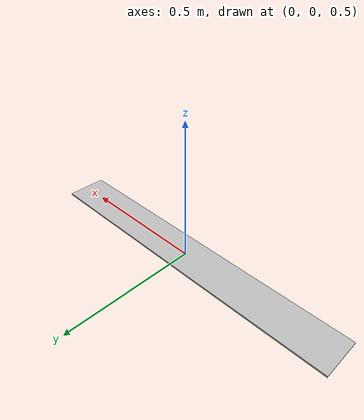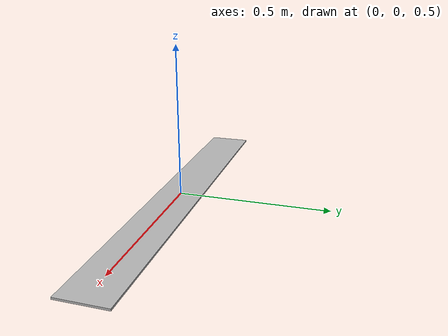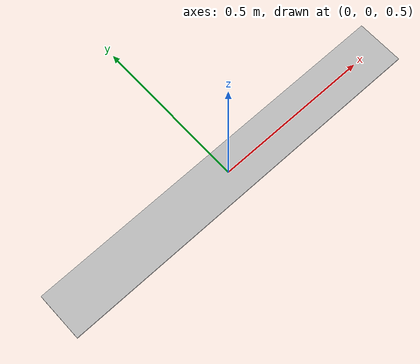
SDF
<?xml version="1.0"?>
<sdf version="1.6">
  <model name="path">
    <pose>0 0 0 0 0 0</pose>
    <static>true</static>
      <link name="path">
        <pose>0 0 0.5 0 0 0</pose>
        <collision name="collision">
          <geometry>
            <box>
              <size>1.219 0.152 0.006</size>
            </box>
          </geometry>
        </collision>
        <visual name="visual">
          <geometry>
            <box>
              <size>1.219 0.152 0.006</size>
            </box>
          </geometry>
        </visual>
      </link>
  </model>
</sdf>
